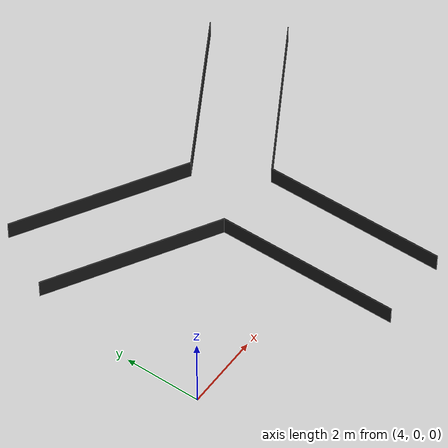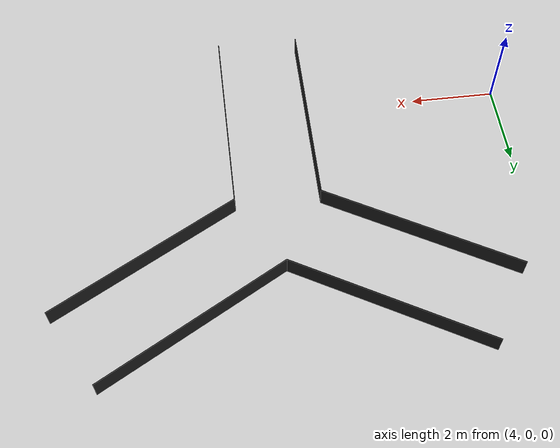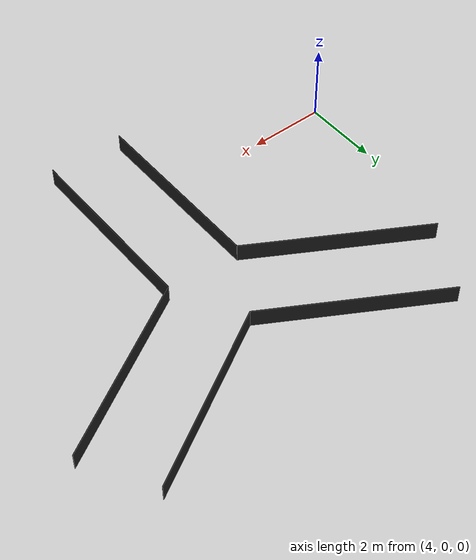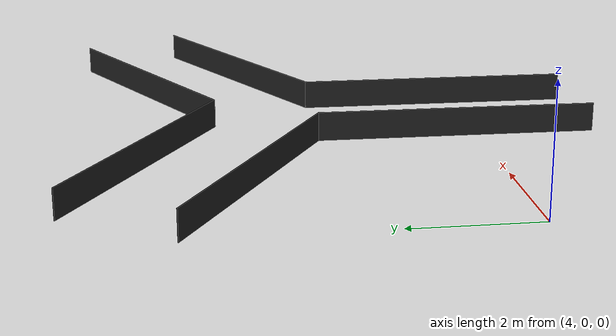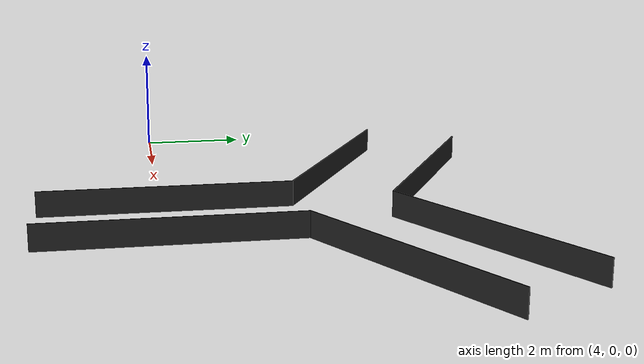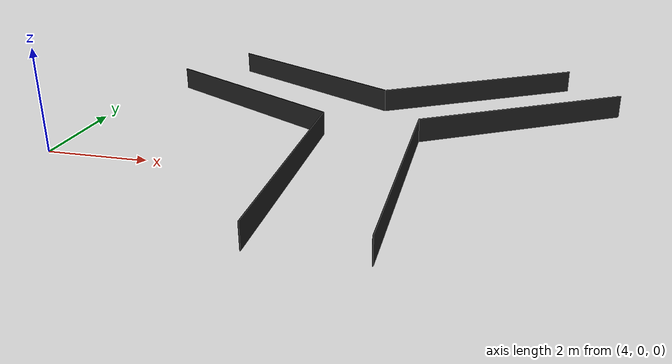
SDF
<?xml version='1.0'?>
<sdf version='1.6'>
  <model name='T3'>
    <link name='link'>
      <inertial>
        <mass>1</mass>
        <inertia>
          <ixx>0.166667</ixx>
          <ixy>0</ixy>
          <ixz>0</ixz>
          <iyy>0.166667</iyy>
          <iyz>0</iyz>
          <izz>0.166667</izz>
        </inertia>
        <pose frame=''>0 0 0 0 -0 0</pose>
      </inertial>
      <self_collide>0</self_collide>
      <enable_wind>0</enable_wind>
      <kinematic>0</kinematic>
      <pose frame=''>8.67982 0.164587 0 0 -0 0</pose>
      <gravity>1</gravity>
      <visual name='ModelPreview_1::link::visual_2'>
        <geometry>
          <box>
            <size>0.015 4.8453 0.5</size>
          </box>
        </geometry>
        <material>
          <script>
            <name>Gazebo/FlatBlack</name>
            <uri>file://media/materials/scripts/gazebo.material</uri>
          </script>
          <shader type='pixel'>
            <normal_map>__default__</normal_map>
          </shader>
          <ambient>0.1 0.1 0.1 1</ambient>
          <diffuse>0.1 0.1 0.1 1</diffuse>
          <specular>0.01 0.01 0.01 1</specular>
          <emissive>0 0 0 1</emissive>
        </material>
        <pose frame=''>2 0 0 0 -0 0</pose>
        <transparency>0</transparency>
        <cast_shadows>1</cast_shadows>
      </visual>
      <visual name='visual'>
        <geometry>
          <box>
            <size>0.015 4.8453 0.5</size>
          </box>
        </geometry>
        <material>
          <script>
            <name>Gazebo/FlatBlack</name>
            <uri>file://media/materials/scripts/gazebo.material</uri>
          </script>
          <shader type='pixel'>
            <normal_map>__default__</normal_map>
          </shader>
          <ambient>0.1 0.1 0.1 1</ambient>
          <diffuse>0.1 0.1 0.1 1</diffuse>
          <specular>0.01 0.01 0.01 1</specular>
          <emissive>0 0 0 1</emissive>
        </material>
        <pose frame=''>0 0 0 0 -0 0</pose>
        <transparency>0</transparency>
        <cast_shadows>1</cast_shadows>
      </visual>
      <collision name='collision'>
        <laser_retro>0</laser_retro>
        <max_contacts>10</max_contacts>
        <pose frame=''>0 0 0 0 -0 0</pose>
        <geometry>
          <box>
            <size>0.015 4.8453 0.5</size>
          </box>
        </geometry>
        <surface>
          <friction>
            <ode>
              <mu>1</mu>
              <mu2>1</mu2>
              <fdir1>0 0 0</fdir1>
              <slip1>0</slip1>
              <slip2>0</slip2>
            </ode>
            <torsional>
              <coefficient>1</coefficient>
              <patch_radius>0</patch_radius>
              <surface_radius>0</surface_radius>
              <use_patch_radius>1</use_patch_radius>
              <ode>
                <slip>0</slip>
              </ode>
            </torsional>
          </friction>
          <bounce>
            <restitution_coefficient>0</restitution_coefficient>
            <threshold>1e+06</threshold>
          </bounce>
          <contact>
            <collide_without_contact>0</collide_without_contact>
            <collide_without_contact_bitmask>1</collide_without_contact_bitmask>
            <collide_bitmask>1</collide_bitmask>
            <ode>
              <soft_cfm>0</soft_cfm>
              <soft_erp>0.2</soft_erp>
              <kp>1e+13</kp>
              <kd>1</kd>
              <max_vel>0.01</max_vel>
              <min_depth>0</min_depth>
            </ode>
            <bullet>
              <split_impulse>1</split_impulse>
              <split_impulse_penetration_threshold>-0.01</split_impulse_penetration_threshold>
              <soft_cfm>0</soft_cfm>
              <soft_erp>0.2</soft_erp>
              <kp>1e+13</kp>
              <kd>1</kd>
            </bullet>
          </contact>
        </surface>
      </collision>
      <collision name='collision_1'>
        <laser_retro>0</laser_retro>
        <max_contacts>10</max_contacts>
        <pose frame=''>2 0 0 0 -0 0</pose>
        <geometry>
          <box>
            <size>0.015 4.8453 0.5</size>
          </box>
        </geometry>
        <surface>
          <friction>
            <ode>
              <mu>1</mu>
              <mu2>1</mu2>
              <fdir1>0 0 0</fdir1>
              <slip1>0</slip1>
              <slip2>0</slip2>
            </ode>
            <torsional>
              <coefficient>1</coefficient>
              <patch_radius>0</patch_radius>
              <surface_radius>0</surface_radius>
              <use_patch_radius>1</use_patch_radius>
              <ode>
                <slip>0</slip>
              </ode>
            </torsional>
          </friction>
          <bounce>
            <restitution_coefficient>0</restitution_coefficient>
            <threshold>1e+06</threshold>
          </bounce>
          <contact>
            <collide_without_contact>0</collide_without_contact>
            <collide_without_contact_bitmask>1</collide_without_contact_bitmask>
            <collide_bitmask>1</collide_bitmask>
            <ode>
              <soft_cfm>0</soft_cfm>
              <soft_erp>0.2</soft_erp>
              <kp>1e+13</kp>
              <kd>1</kd>
              <max_vel>0.01</max_vel>
              <min_depth>0</min_depth>
            </ode>
            <bullet>
              <split_impulse>1</split_impulse>
              <split_impulse_penetration_threshold>-0.01</split_impulse_penetration_threshold>
              <soft_cfm>0</soft_cfm>
              <soft_erp>0.2</soft_erp>
              <kp>1e+13</kp>
              <kd>1</kd>
            </bullet>
          </contact>
        </surface>
      </collision>
    </link>
    <link name='link_clone'>
      <inertial>
        <mass>1</mass>
        <inertia>
          <ixx>0.166667</ixx>
          <ixy>0</ixy>
          <ixz>0</ixz>
          <iyy>0.166667</iyy>
          <iyz>0</iyz>
          <izz>0.166667</izz>
        </inertia>
        <pose frame=''>0 0 0 0 -0 0</pose>
      </inertial>
      <self_collide>0</self_collide>
      <enable_wind>0</enable_wind>
      <kinematic>0</kinematic>
      <pose frame=''>12.7749 3.79089 0 5e-06 -0 2.0944</pose>
      <gravity>1</gravity>
      <visual name='visual'>
        <geometry>
          <box>
            <size>0.015 4.8453 0.5</size>
          </box>
        </geometry>
        <material>
          <script>
            <name>Gazebo/FlatBlack</name>
            <uri>file://media/materials/scripts/gazebo.material</uri>
          </script>
          <shader type='pixel'>
            <normal_map>__default__</normal_map>
          </shader>
          <ambient>0.1 0.1 0.1 1</ambient>
          <diffuse>0.1 0.1 0.1 1</diffuse>
          <specular>0.01 0.01 0.01 1</specular>
          <emissive>0 0 0 1</emissive>
        </material>
        <pose frame=''>0 0 0 0 -0 0</pose>
        <transparency>0</transparency>
        <cast_shadows>1</cast_shadows>
      </visual>
      <visual name='visual_2'>
        <geometry>
          <box>
            <size>0.015 4.8453 0.5</size>
          </box>
        </geometry>
        <material>
          <script>
            <name>Gazebo/FlatBlack</name>
            <uri>file://media/materials/scripts/gazebo.material</uri>
          </script>
          <shader type='pixel'>
            <normal_map>__default__</normal_map>
          </shader>
          <ambient>0.1 0.1 0.1 1</ambient>
          <diffuse>0.1 0.1 0.1 1</diffuse>
          <specular>0.01 0.01 0.01 1</specular>
          <emissive>0 0 0 1</emissive>
        </material>
        <pose frame=''>2 0 0 0 -0 0</pose>
        <transparency>0</transparency>
        <cast_shadows>1</cast_shadows>
      </visual>
      <collision name='collision_1'>
        <laser_retro>0</laser_retro>
        <max_contacts>10</max_contacts>
        <pose frame=''>2 0 0 0 -0 0</pose>
        <geometry>
          <box>
            <size>0.015 4.8453 0.5</size>
          </box>
        </geometry>
        <surface>
          <friction>
            <ode>
              <mu>1</mu>
              <mu2>1</mu2>
              <fdir1>0 0 0</fdir1>
              <slip1>0</slip1>
              <slip2>0</slip2>
            </ode>
            <torsional>
              <coefficient>1</coefficient>
              <patch_radius>0</patch_radius>
              <surface_radius>0</surface_radius>
              <use_patch_radius>1</use_patch_radius>
              <ode>
                <slip>0</slip>
              </ode>
            </torsional>
          </friction>
          <bounce>
            <restitution_coefficient>0</restitution_coefficient>
            <threshold>1e+06</threshold>
          </bounce>
          <contact>
            <collide_without_contact>0</collide_without_contact>
            <collide_without_contact_bitmask>1</collide_without_contact_bitmask>
            <collide_bitmask>1</collide_bitmask>
            <ode>
              <soft_cfm>0</soft_cfm>
              <soft_erp>0.2</soft_erp>
              <kp>1e+13</kp>
              <kd>1</kd>
              <max_vel>0.01</max_vel>
              <min_depth>0</min_depth>
            </ode>
            <bullet>
              <split_impulse>1</split_impulse>
              <split_impulse_penetration_threshold>-0.01</split_impulse_penetration_threshold>
              <soft_cfm>0</soft_cfm>
              <soft_erp>0.2</soft_erp>
              <kp>1e+13</kp>
              <kd>1</kd>
            </bullet>
          </contact>
        </surface>
      </collision>
      <collision name='collision'>
        <laser_retro>0</laser_retro>
        <max_contacts>10</max_contacts>
        <pose frame=''>0 0 0 0 -0 0</pose>
        <geometry>
          <box>
            <size>0.015 4.8453 0.5</size>
          </box>
        </geometry>
        <surface>
          <friction>
            <ode>
              <mu>1</mu>
              <mu2>1</mu2>
              <fdir1>0 0 0</fdir1>
              <slip1>0</slip1>
              <slip2>0</slip2>
            </ode>
            <torsional>
              <coefficient>1</coefficient>
              <patch_radius>0</patch_radius>
              <surface_radius>0</surface_radius>
              <use_patch_radius>1</use_patch_radius>
              <ode>
                <slip>0</slip>
              </ode>
            </torsional>
          </friction>
          <bounce>
            <restitution_coefficient>0</restitution_coefficient>
            <threshold>1e+06</threshold>
          </bounce>
          <contact>
            <collide_without_contact>0</collide_without_contact>
            <collide_without_contact_bitmask>1</collide_without_contact_bitmask>
            <collide_bitmask>1</collide_bitmask>
            <ode>
              <soft_cfm>0</soft_cfm>
              <soft_erp>0.2</soft_erp>
              <kp>1e+13</kp>
              <kd>1</kd>
              <max_vel>0.01</max_vel>
              <min_depth>0</min_depth>
            </ode>
            <bullet>
              <split_impulse>1</split_impulse>
              <split_impulse_penetration_threshold>-0.01</split_impulse_penetration_threshold>
              <soft_cfm>0</soft_cfm>
              <soft_erp>0.2</soft_erp>
              <kp>1e+13</kp>
              <kd>1</kd>
            </bullet>
          </contact>
        </surface>
      </collision>
    </link>
    <link name='link_clone_0'>
      <inertial>
        <mass>1</mass>
        <inertia>
          <ixx>0.166667</ixx>
          <ixy>0</ixy>
          <ixz>0</ixz>
          <iyy>0.166667</iyy>
          <iyz>0</iyz>
          <izz>0.166667</izz>
        </inertia>
        <pose frame=''>0 0 0 0 -0 0</pose>
      </inertial>
      <self_collide>0</self_collide>
      <enable_wind>0</enable_wind>
      <kinematic>0</kinematic>
      <pose frame=''>7.58433 5.52401 0 5e-06 -0 -2.0944</pose>
      <gravity>1</gravity>
      <visual name='visual_2'>
        <geometry>
          <box>
            <size>0.015 4.8453 0.5</size>
          </box>
        </geometry>
        <material>
          <script>
            <name>Gazebo/FlatBlack</name>
            <uri>file://media/materials/scripts/gazebo.material</uri>
          </script>
          <shader type='pixel'>
            <normal_map>__default__</normal_map>
          </shader>
          <ambient>0.1 0.1 0.1 1</ambient>
          <diffuse>0.1 0.1 0.1 1</diffuse>
          <specular>0.01 0.01 0.01 1</specular>
          <emissive>0 0 0 1</emissive>
        </material>
        <pose frame=''>2 0 0 0 -0 0</pose>
        <transparency>0</transparency>
        <cast_shadows>1</cast_shadows>
      </visual>
      <visual name='visual'>
        <geometry>
          <box>
            <size>0.015 4.8453 0.5</size>
          </box>
        </geometry>
        <material>
          <script>
            <name>Gazebo/FlatBlack</name>
            <uri>file://media/materials/scripts/gazebo.material</uri>
          </script>
          <shader type='pixel'>
            <normal_map>__default__</normal_map>
          </shader>
          <ambient>0.1 0.1 0.1 1</ambient>
          <diffuse>0.1 0.1 0.1 1</diffuse>
          <specular>0.01 0.01 0.01 1</specular>
          <emissive>0 0 0 1</emissive>
        </material>
        <pose frame=''>0 0 0 0 -0 0</pose>
        <transparency>0</transparency>
        <cast_shadows>1</cast_shadows>
      </visual>
      <collision name='collision'>
        <laser_retro>0</laser_retro>
        <max_contacts>10</max_contacts>
        <pose frame=''>0 0 0 0 -0 0</pose>
        <geometry>
          <box>
            <size>0.015 4.8453 0.5</size>
          </box>
        </geometry>
        <surface>
          <friction>
            <ode>
              <mu>1</mu>
              <mu2>1</mu2>
              <fdir1>0 0 0</fdir1>
              <slip1>0</slip1>
              <slip2>0</slip2>
            </ode>
            <torsional>
              <coefficient>1</coefficient>
              <patch_radius>0</patch_radius>
              <surface_radius>0</surface_radius>
              <use_patch_radius>1</use_patch_radius>
              <ode>
                <slip>0</slip>
              </ode>
            </torsional>
          </friction>
          <bounce>
            <restitution_coefficient>0</restitution_coefficient>
            <threshold>1e+06</threshold>
          </bounce>
          <contact>
            <collide_without_contact>0</collide_without_contact>
            <collide_without_contact_bitmask>1</collide_without_contact_bitmask>
            <collide_bitmask>1</collide_bitmask>
            <ode>
              <soft_cfm>0</soft_cfm>
              <soft_erp>0.2</soft_erp>
              <kp>1e+13</kp>
              <kd>1</kd>
              <max_vel>0.01</max_vel>
              <min_depth>0</min_depth>
            </ode>
            <bullet>
              <split_impulse>1</split_impulse>
              <split_impulse_penetration_threshold>-0.01</split_impulse_penetration_threshold>
              <soft_cfm>0</soft_cfm>
              <soft_erp>0.2</soft_erp>
              <kp>1e+13</kp>
              <kd>1</kd>
            </bullet>
          </contact>
        </surface>
      </collision>
      <collision name='collision_1'>
        <laser_retro>0</laser_retro>
        <max_contacts>10</max_contacts>
        <pose frame=''>2 0 0 0 -0 0</pose>
        <geometry>
          <box>
            <size>0.015 4.8453 0.5</size>
          </box>
        </geometry>
        <surface>
          <friction>
            <ode>
              <mu>1</mu>
              <mu2>1</mu2>
              <fdir1>0 0 0</fdir1>
              <slip1>0</slip1>
              <slip2>0</slip2>
            </ode>
            <torsional>
              <coefficient>1</coefficient>
              <patch_radius>0</patch_radius>
              <surface_radius>0</surface_radius>
              <use_patch_radius>1</use_patch_radius>
              <ode>
                <slip>0</slip>
              </ode>
            </torsional>
          </friction>
          <bounce>
            <restitution_coefficient>0</restitution_coefficient>
            <threshold>1e+06</threshold>
          </bounce>
          <contact>
            <collide_without_contact>0</collide_without_contact>
            <collide_without_contact_bitmask>1</collide_without_contact_bitmask>
            <collide_bitmask>1</collide_bitmask>
            <ode>
              <soft_cfm>0</soft_cfm>
              <soft_erp>0.2</soft_erp>
              <kp>1e+13</kp>
              <kd>1</kd>
              <max_vel>0.01</max_vel>
              <min_depth>0</min_depth>
            </ode>
            <bullet>
              <split_impulse>1</split_impulse>
              <split_impulse_penetration_threshold>-0.01</split_impulse_penetration_threshold>
              <soft_cfm>0</soft_cfm>
              <soft_erp>0.2</soft_erp>
              <kp>1e+13</kp>
              <kd>1</kd>
            </bullet>
          </contact>
        </surface>
      </collision>
    </link>
    <static>1</static>
    <allow_auto_disable>1</allow_auto_disable>
  </model>
</sdf>
